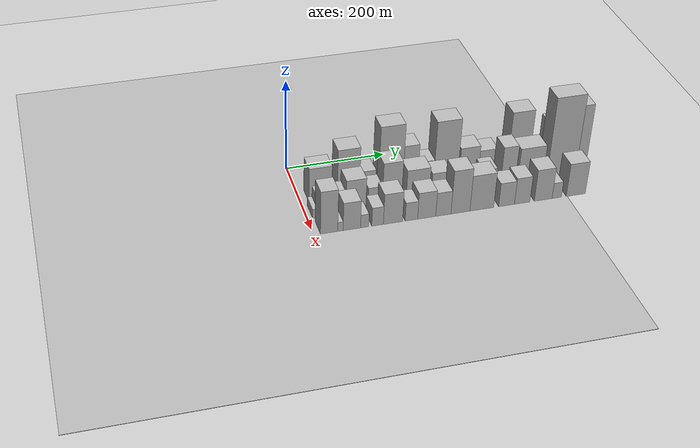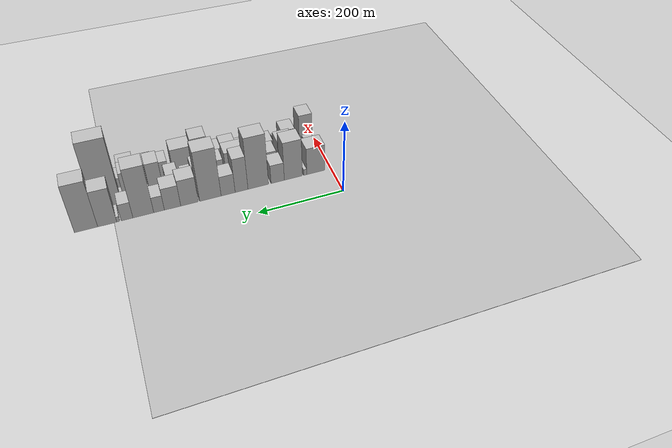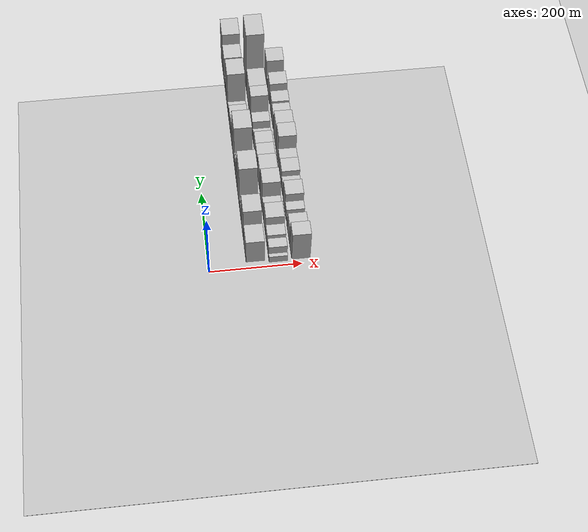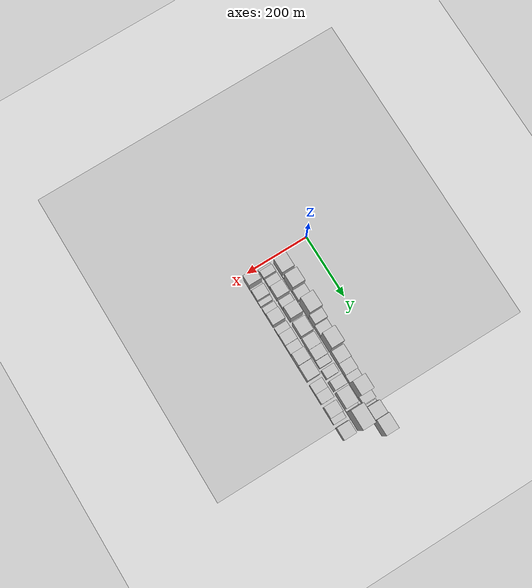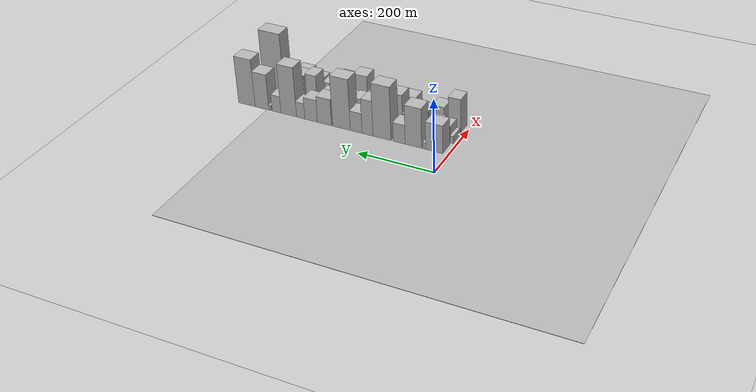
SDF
<sdf version="1.6">
 <world name="default">
  <include><name>ground_plane_1</name><uri>model://HANNAS_ground_plane</uri></include>
  <include>
   <name>ground_plane_2</name>
   <uri>model://HANNAS_ground_plane</uri>
   <pose>100 0 0  0 0 0</pose>
  </include>
  <model name="building_15">
   <static>1</static>
   <pose>100.0000 37.9918 0 0.000000 0.000000 0.000000</pose>
   <link name="link">
    <pose>0 0 39.00 0 0 0</pose>
    <collision name="collision"><geometry><box><size>40.0000 44.9849 78.0000</size></box></geometry></collision>
    <visual name="visual">
     <cast_shadows>0</cast_shadows>
     <geometry><box><size>40.0000 44.9849 78.0000</size></box></geometry>
     <material>
      <script>
       <uri>model://HANNAS_wall/materials/scripts</uri>
       <uri>model://HANNAS_wall/materials/textures</uri>
       <name>vrc/HANNAS_wall</name>
      </script>
     </material>
    </visual>
   </link>
  </model>
  <model name="building_16">
   <static>1</static>
   <pose>100.0000 64.3034 0 0.000000 0.000000 0.000000</pose>
   <link name="link">
    <pose>0 0 9.00 0 0 0</pose>
    <collision name="collision"><geometry><box><size>40.0000 7.6383 18.0000</size></box></geometry></collision>
    <visual name="visual">
     <cast_shadows>0</cast_shadows>
     <geometry><box><size>40.0000 7.6383 18.0000</size></box></geometry>
     <material>
      <script>
       <uri>model://HANNAS_wall/materials/scripts</uri>
       <uri>model://HANNAS_wall/materials/textures</uri>
       <name>vrc/HANNAS_wall</name>
      </script>
     </material>
    </visual>
   </link>
  </model>
  <model name="building_17">
   <static>1</static>
   <pose>100.0000 93.0453 0 0.000000 0.000000 0.000000</pose>
   <link name="link">
    <pose>0 0 55.50 0 0 0</pose>
    <collision name="collision"><geometry><box><size>40.0000 43.8455 111.0000</size></box></geometry></collision>
    <visual name="visual">
     <cast_shadows>0</cast_shadows>
     <geometry><box><size>40.0000 43.8455 111.0000</size></box></geometry>
     <material>
      <script>
       <uri>model://HANNAS_wall/materials/scripts</uri>
       <uri>model://HANNAS_wall/materials/textures</uri>
       <name>vrc/HANNAS_wall</name>
      </script>
     </material>
    </visual>
   </link>
  </model>
  <model name="building_18">
   <static>1</static>
   <pose>100.0000 130.8705 0 0.000000 0.000000 0.000000</pose>
   <link name="link">
    <pose>0 0 27.00 0 0 0</pose>
    <collision name="collision"><geometry><box><size>40.0000 31.8048 54.0000</size></box></geometry></collision>
    <visual name="visual">
     <cast_shadows>0</cast_shadows>
     <geometry><box><size>40.0000 31.8048 54.0000</size></box></geometry>
     <material>
      <script>
       <uri>model://HANNAS_wall/materials/scripts</uri>
       <uri>model://HANNAS_wall/materials/textures</uri>
       <name>vrc/HANNAS_wall</name>
      </script>
     </material>
    </visual>
   </link>
  </model>
  <model name="building_19">
   <static>1</static>
   <pose>100.0000 177.0895 0 0.000000 0.000000 0.000000</pose>
   <link name="link">
    <pose>0 0 75.00 0 0 0</pose>
    <collision name="collision"><geometry><box><size>40.0000 48.6332 150.0000</size></box></geometry></collision>
    <visual name="visual">
     <cast_shadows>0</cast_shadows>
     <geometry><box><size>40.0000 48.6332 150.0000</size></box></geometry>
     <material>
      <script>
       <uri>model://HANNAS_wall/materials/scripts</uri>
       <uri>model://HANNAS_wall/materials/textures</uri>
       <name>vrc/HANNAS_wall</name>
      </script>
     </material>
    </visual>
   </link>
  </model>
  <model name="building_20">
   <static>1</static>
   <pose>100.0000 216.3856 0 0.000000 0.000000 0.000000</pose>
   <link name="link">
    <pose>0 0 49.50 0 0 0</pose>
    <collision name="collision"><geometry><box><size>40.0000 29.9591 99.0000</size></box></geometry></collision>
    <visual name="visual">
     <cast_shadows>0</cast_shadows>
     <geometry><box><size>40.0000 29.9591 99.0000</size></box></geometry>
     <material>
      <script>
       <uri>model://HANNAS_wall/materials/scripts</uri>
       <uri>model://HANNAS_wall/materials/textures</uri>
       <name>vrc/HANNAS_wall</name>
      </script>
     </material>
    </visual>
   </link>
  </model>
  <model name="building_21">
   <static>1</static>
   <pose>100.0000 247.5497 0 0.000000 0.000000 0.000000</pose>
   <link name="link">
    <pose>0 0 28.50 0 0 0</pose>
    <collision name="collision"><geometry><box><size>40.0000 32.3690 57.0000</size></box></geometry></collision>
    <visual name="visual">
     <cast_shadows>0</cast_shadows>
     <geometry><box><size>40.0000 32.3690 57.0000</size></box></geometry>
     <material>
      <script>
       <uri>model://HANNAS_wall/materials/scripts</uri>
       <uri>model://HANNAS_wall/materials/textures</uri>
       <name>vrc/HANNAS_wall</name>
      </script>
     </material>
    </visual>
   </link>
  </model>
  <model name="building_22">
   <static>1</static>
   <pose>100.0000 288.2058 0 0.000000 0.000000 0.000000</pose>
   <link name="link">
    <pose>0 0 72.00 0 0 0</pose>
    <collision name="collision"><geometry><box><size>40.0000 48.9432 144.0000</size></box></geometry></collision>
    <visual name="visual">
     <cast_shadows>0</cast_shadows>
     <geometry><box><size>40.0000 48.9432 144.0000</size></box></geometry>
     <material>
      <script>
       <uri>model://HANNAS_wall/materials/scripts</uri>
       <uri>model://HANNAS_wall/materials/textures</uri>
       <name>vrc/HANNAS_wall</name>
      </script>
     </material>
    </visual>
   </link>
  </model>
  <model name="building_23">
   <static>1</static>
   <pose>100.0000 335.4742 0 0.000000 0.000000 0.000000</pose>
   <link name="link">
    <pose>0 0 37.50 0 0 0</pose>
    <collision name="collision"><geometry><box><size>40.0000 39.5936 75.0000</size></box></geometry></collision>
    <visual name="visual">
     <cast_shadows>0</cast_shadows>
     <geometry><box><size>40.0000 39.5936 75.0000</size></box></geometry>
     <material>
      <script>
       <uri>model://HANNAS_wall/materials/scripts</uri>
       <uri>model://HANNAS_wall/materials/textures</uri>
       <name>vrc/HANNAS_wall</name>
      </script>
     </material>
    </visual>
   </link>
  </model>
  <model name="building_24">
   <static>1</static>
   <pose>100.0000 373.3319 0 0.000000 0.000000 0.000000</pose>
   <link name="link">
    <pose>0 0 31.50 0 0 0</pose>
    <collision name="collision"><geometry><box><size>40.0000 36.1218 63.0000</size></box></geometry></collision>
    <visual name="visual">
     <cast_shadows>0</cast_shadows>
     <geometry><box><size>40.0000 36.1218 63.0000</size></box></geometry>
     <material>
      <script>
       <uri>model://HANNAS_wall/materials/scripts</uri>
       <uri>model://HANNAS_wall/materials/textures</uri>
       <name>vrc/HANNAS_wall</name>
      </script>
     </material>
    </visual>
   </link>
  </model>
  <model name="building_25">
   <static>1</static>
   <pose>100.0000 403.0657 0 0.000000 0.000000 0.000000</pose>
   <link name="link">
    <pose>0 0 22.50 0 0 0</pose>
    <collision name="collision"><geometry><box><size>40.0000 23.3459 45.0000</size></box></geometry></collision>
    <visual name="visual">
     <cast_shadows>0</cast_shadows>
     <geometry><box><size>40.0000 23.3459 45.0000</size></box></geometry>
     <material>
      <script>
       <uri>model://HANNAS_wall/materials/scripts</uri>
       <uri>model://HANNAS_wall/materials/textures</uri>
       <name>vrc/HANNAS_wall</name>
      </script>
     </material>
    </visual>
   </link>
  </model>
  <model name="building_26">
   <static>1</static>
   <pose>100.0000 437.3186 0 0.000000 0.000000 0.000000</pose>
   <link name="link">
    <pose>0 0 70.50 0 0 0</pose>
    <collision name="collision"><geometry><box><size>40.0000 45.1599 141.0000</size></box></geometry></collision>
    <visual name="visual">
     <cast_shadows>0</cast_shadows>
     <geometry><box><size>40.0000 45.1599 141.0000</size></box></geometry>
     <material>
      <script>
       <uri>model://HANNAS_wall/materials/scripts</uri>
       <uri>model://HANNAS_wall/materials/textures</uri>
       <name>vrc/HANNAS_wall</name>
      </script>
     </material>
    </visual>
   </link>
  </model>
  <model name="building_27">
   <static>1</static>
   <pose>100.0000 472.4783 0 0.000000 0.000000 0.000000</pose>
   <link name="link">
    <pose>0 0 24.00 0 0 0</pose>
    <collision name="collision"><geometry><box><size>40.0000 25.1595 48.0000</size></box></geometry></collision>
    <visual name="visual">
     <cast_shadows>0</cast_shadows>
     <geometry><box><size>40.0000 25.1595 48.0000</size></box></geometry>
     <material>
      <script>
       <uri>model://HANNAS_wall/materials/scripts</uri>
       <uri>model://HANNAS_wall/materials/textures</uri>
       <name>vrc/HANNAS_wall</name>
      </script>
     </material>
    </visual>
   </link>
  </model>
  <model name="building_28">
   <static>1</static>
   <pose>100.0000 491.3182 0 0.000000 0.000000 0.000000</pose>
   <link name="link">
    <pose>0 0 7.50 0 0 0</pose>
    <collision name="collision"><geometry><box><size>40.0000 6.5202 15.0000</size></box></geometry></collision>
    <visual name="visual">
     <cast_shadows>0</cast_shadows>
     <geometry><box><size>40.0000 6.5202 15.0000</size></box></geometry>
     <material>
      <script>
       <uri>model://HANNAS_wall/materials/scripts</uri>
       <uri>model://HANNAS_wall/materials/textures</uri>
       <name>vrc/HANNAS_wall</name>
      </script>
     </material>
    </visual>
   </link>
  </model>
  <model name="building_29">
   <static>1</static>
   <pose>100.0000 514.7779 0 0.000000 0.000000 0.000000</pose>
   <link name="link">
    <pose>0 0 51.00 0 0 0</pose>
    <collision name="collision"><geometry><box><size>40.0000 40.3991 102.0000</size></box></geometry></collision>
    <visual name="visual">
     <cast_shadows>0</cast_shadows>
     <geometry><box><size>40.0000 40.3991 102.0000</size></box></geometry>
     <material>
      <script>
       <uri>model://HANNAS_wall/materials/scripts</uri>
       <uri>model://HANNAS_wall/materials/textures</uri>
       <name>vrc/HANNAS_wall</name>
      </script>
     </material>
    </visual>
   </link>
  </model>
  <model name="building_30">
   <static>1</static>
   <pose>100.0000 559.2264 0 0.000000 0.000000 0.000000</pose>
   <link name="link">
    <pose>0 0 67.50 0 0 0</pose>
    <collision name="collision"><geometry><box><size>40.0000 48.4979 135.0000</size></box></geometry></collision>
    <visual name="visual">
     <cast_shadows>0</cast_shadows>
     <geometry><box><size>40.0000 48.4979 135.0000</size></box></geometry>
     <material>
      <script>
       <uri>model://HANNAS_wall/materials/scripts</uri>
       <uri>model://HANNAS_wall/materials/textures</uri>
       <name>vrc/HANNAS_wall</name>
      </script>
     </material>
    </visual>
   </link>
  </model>
  <model name="building_47">
   <static>1</static>
   <pose>149.0000 14.4540 0 0.000000 0.000000 0.000000</pose>
   <link name="link">
    <pose>0 0 10.50 0 0 0</pose>
    <collision name="collision"><geometry><box><size>40.0000 8.8197 21.0000</size></box></geometry></collision>
    <visual name="visual">
     <cast_shadows>0</cast_shadows>
     <geometry><box><size>40.0000 8.8197 21.0000</size></box></geometry>
     <material>
      <script>
       <uri>model://HANNAS_wall/materials/scripts</uri>
       <uri>model://HANNAS_wall/materials/textures</uri>
       <name>vrc/HANNAS_wall</name>
      </script>
     </material>
    </visual>
   </link>
  </model>
  <model name="building_48">
   <static>1</static>
   <pose>149.0000 30.4385 0 0.000000 0.000000 0.000000</pose>
   <link name="link">
    <pose>0 0 22.50 0 0 0</pose>
    <collision name="collision"><geometry><box><size>40.0000 23.1492 45.0000</size></box></geometry></collision>
    <visual name="visual">
     <cast_shadows>0</cast_shadows>
     <geometry><box><size>40.0000 23.1492 45.0000</size></box></geometry>
     <material>
      <script>
       <uri>model://HANNAS_wall/materials/scripts</uri>
       <uri>model://HANNAS_wall/materials/textures</uri>
       <name>vrc/HANNAS_wall</name>
      </script>
     </material>
    </visual>
   </link>
  </model>
  <model name="building_49">
   <static>1</static>
   <pose>149.0000 60.8361 0 0.000000 0.000000 0.000000</pose>
   <link name="link">
    <pose>0 0 24.00 0 0 0</pose>
    <collision name="collision"><geometry><box><size>40.0000 27.6461 48.0000</size></box></geometry></collision>
    <visual name="visual">
     <cast_shadows>0</cast_shadows>
     <geometry><box><size>40.0000 27.6461 48.0000</size></box></geometry>
     <material>
      <script>
       <uri>model://HANNAS_wall/materials/scripts</uri>
       <uri>model://HANNAS_wall/materials/textures</uri>
       <name>vrc/HANNAS_wall</name>
      </script>
     </material>
    </visual>
   </link>
  </model>
  <model name="building_50">
   <static>1</static>
   <pose>149.0000 94.0696 0 0.000000 0.000000 0.000000</pose>
   <link name="link">
    <pose>0 0 37.50 0 0 0</pose>
    <collision name="collision"><geometry><box><size>40.0000 38.8209 75.0000</size></box></geometry></collision>
    <visual name="visual">
     <cast_shadows>0</cast_shadows>
     <geometry><box><size>40.0000 38.8209 75.0000</size></box></geometry>
     <material>
      <script>
       <uri>model://HANNAS_wall/materials/scripts</uri>
       <uri>model://HANNAS_wall/materials/textures</uri>
       <name>vrc/HANNAS_wall</name>
      </script>
     </material>
    </visual>
   </link>
  </model>
  <model name="building_51">
   <static>1</static>
   <pose>149.0000 131.4338 0 0.000000 0.000000 0.000000</pose>
   <link name="link">
    <pose>0 0 25.50 0 0 0</pose>
    <collision name="collision"><geometry><box><size>40.0000 27.9074 51.0000</size></box></geometry></collision>
    <visual name="visual">
     <cast_shadows>0</cast_shadows>
     <geometry><box><size>40.0000 27.9074 51.0000</size></box></geometry>
     <material>
      <script>
       <uri>model://HANNAS_wall/materials/scripts</uri>
       <uri>model://HANNAS_wall/materials/textures</uri>
       <name>vrc/HANNAS_wall</name>
      </script>
     </material>
    </visual>
   </link>
  </model>
  <model name="building_52">
   <static>1</static>
   <pose>149.0000 164.4313 0 0.000000 0.000000 0.000000</pose>
   <link name="link">
    <pose>0 0 51.00 0 0 0</pose>
    <collision name="collision"><geometry><box><size>40.0000 38.0876 102.0000</size></box></geometry></collision>
    <visual name="visual">
     <cast_shadows>0</cast_shadows>
     <geometry><box><size>40.0000 38.0876 102.0000</size></box></geometry>
     <material>
      <script>
       <uri>model://HANNAS_wall/materials/scripts</uri>
       <uri>model://HANNAS_wall/materials/textures</uri>
       <name>vrc/HANNAS_wall</name>
      </script>
     </material>
    </visual>
   </link>
  </model>
  <model name="building_53">
   <static>1</static>
   <pose>149.0000 215.4328 0 0.000000 0.000000 0.000000</pose>
   <link name="link">
    <pose>0 0 39.00 0 0 0</pose>
    <collision name="collision"><geometry><box><size>40.0000 45.9155 78.0000</size></box></geometry></collision>
    <visual name="visual">
     <cast_shadows>0</cast_shadows>
     <geometry><box><size>40.0000 45.9155 78.0000</size></box></geometry>
     <material>
      <script>
       <uri>model://HANNAS_wall/materials/scripts</uri>
       <uri>model://HANNAS_wall/materials/textures</uri>
       <name>vrc/HANNAS_wall</name>
      </script>
     </material>
    </visual>
   </link>
  </model>
  <model name="building_54">
   <static>1</static>
   <pose>149.0000 261.2427 0 0.000000 0.000000 0.000000</pose>
   <link name="link">
    <pose>0 0 31.50 0 0 0</pose>
    <collision name="collision"><geometry><box><size>40.0000 37.7043 63.0000</size></box></geometry></collision>
    <visual name="visual">
     <cast_shadows>0</cast_shadows>
     <geometry><box><size>40.0000 37.7043 63.0000</size></box></geometry>
     <material>
      <script>
       <uri>model://HANNAS_wall/materials/scripts</uri>
       <uri>model://HANNAS_wall/materials/textures</uri>
       <name>vrc/HANNAS_wall</name>
      </script>
     </material>
    </visual>
   </link>
  </model>
  <model name="building_55">
   <static>1</static>
   <pose>149.0000 297.2227 0 0.000000 0.000000 0.000000</pose>
   <link name="link">
    <pose>0 0 30.00 0 0 0</pose>
    <collision name="collision"><geometry><box><size>40.0000 34.2557 60.0000</size></box></geometry></collision>
    <visual name="visual">
     <cast_shadows>0</cast_shadows>
     <geometry><box><size>40.0000 34.2557 60.0000</size></box></geometry>
     <material>
      <script>
       <uri>model://HANNAS_wall/materials/scripts</uri>
       <uri>model://HANNAS_wall/materials/textures</uri>
       <name>vrc/HANNAS_wall</name>
      </script>
     </material>
    </visual>
   </link>
  </model>
  <model name="building_56">
   <static>1</static>
   <pose>149.0000 325.9639 0 0.000000 0.000000 0.000000</pose>
   <link name="link">
    <pose>0 0 19.50 0 0 0</pose>
    <collision name="collision"><geometry><box><size>40.0000 23.2268 39.0000</size></box></geometry></collision>
    <visual name="visual">
     <cast_shadows>0</cast_shadows>
     <geometry><box><size>40.0000 23.2268 39.0000</size></box></geometry>
     <material>
      <script>
       <uri>model://HANNAS_wall/materials/scripts</uri>
       <uri>model://HANNAS_wall/materials/textures</uri>
       <name>vrc/HANNAS_wall</name>
      </script>
     </material>
    </visual>
   </link>
  </model>
  <model name="building_57">
   <static>1</static>
   <pose>149.0000 358.6714 0 0.000000 0.000000 0.000000</pose>
   <link name="link">
    <pose>0 0 27.00 0 0 0</pose>
    <collision name="collision"><geometry><box><size>40.0000 28.1883 54.0000</size></box></geometry></collision>
    <visual name="visual">
     <cast_shadows>0</cast_shadows>
     <geometry><box><size>40.0000 28.1883 54.0000</size></box></geometry>
     <material>
      <script>
       <uri>model://HANNAS_wall/materials/scripts</uri>
       <uri>model://HANNAS_wall/materials/textures</uri>
       <name>vrc/HANNAS_wall</name>
      </script>
     </material>
    </visual>
   </link>
  </model>
  <model name="building_58">
   <static>1</static>
   <pose>149.0000 396.8241 0 0.000000 0.000000 0.000000</pose>
   <link name="link">
    <pose>0 0 49.50 0 0 0</pose>
    <collision name="collision"><geometry><box><size>40.0000 30.1171 99.0000</size></box></geometry></collision>
    <visual name="visual">
     <cast_shadows>0</cast_shadows>
     <geometry><box><size>40.0000 30.1171 99.0000</size></box></geometry>
     <material>
      <script>
       <uri>model://HANNAS_wall/materials/scripts</uri>
       <uri>model://HANNAS_wall/materials/textures</uri>
       <name>vrc/HANNAS_wall</name>
      </script>
     </material>
    </visual>
   </link>
  </model>
  <model name="building_59">
   <static>1</static>
   <pose>149.0000 443.0105 0 0.000000 0.000000 0.000000</pose>
   <link name="link">
    <pose>0 0 45.00 0 0 0</pose>
    <collision name="collision"><geometry><box><size>40.0000 52.2557 90.0000</size></box></geometry></collision>
    <visual name="visual">
     <cast_shadows>0</cast_shadows>
     <geometry><box><size>40.0000 52.2557 90.0000</size></box></geometry>
     <material>
      <script>
       <uri>model://HANNAS_wall/materials/scripts</uri>
       <uri>model://HANNAS_wall/materials/textures</uri>
       <name>vrc/HANNAS_wall</name>
      </script>
     </material>
    </visual>
   </link>
  </model>
  <model name="building_60">
   <static>1</static>
   <pose>149.0000 472.9419 0 0.000000 0.000000 0.000000</pose>
   <link name="link">
    <pose>0 0 9.00 0 0 0</pose>
    <collision name="collision"><geometry><box><size>40.0000 7.6071 18.0000</size></box></geometry></collision>
    <visual name="visual">
     <cast_shadows>0</cast_shadows>
     <geometry><box><size>40.0000 7.6071 18.0000</size></box></geometry>
     <material>
      <script>
       <uri>model://HANNAS_wall/materials/scripts</uri>
       <uri>model://HANNAS_wall/materials/textures</uri>
       <name>vrc/HANNAS_wall</name>
      </script>
     </material>
    </visual>
   </link>
  </model>
  <model name="building_61">
   <static>1</static>
   <pose>149.0000 506.7350 0 0.000000 0.000000 0.000000</pose>
   <link name="link">
    <pose>0 0 97.50 0 0 0</pose>
    <collision name="collision"><geometry><box><size>40.0000 59.9790 195.0000</size></box></geometry></collision>
    <visual name="visual">
     <cast_shadows>0</cast_shadows>
     <geometry><box><size>40.0000 59.9790 195.0000</size></box></geometry>
     <material>
      <script>
       <uri>model://HANNAS_wall/materials/scripts</uri>
       <uri>model://HANNAS_wall/materials/textures</uri>
       <name>vrc/HANNAS_wall</name>
      </script>
     </material>
    </visual>
   </link>
  </model>
  <model name="building_80">
   <static>1</static>
   <pose>198.0000 28.9356 0 0.000000 0.000000 0.000000</pose>
   <link name="link">
    <pose>0 0 48.00 0 0 0</pose>
    <collision name="collision"><geometry><box><size>40.0000 33.0670 96.0000</size></box></geometry></collision>
    <visual name="visual">
     <cast_shadows>0</cast_shadows>
     <geometry><box><size>40.0000 33.0670 96.0000</size></box></geometry>
     <material>
      <script>
       <uri>model://HANNAS_wall/materials/scripts</uri>
       <uri>model://HANNAS_wall/materials/textures</uri>
       <name>vrc/HANNAS_wall</name>
      </script>
     </material>
    </visual>
   </link>
  </model>
  <model name="building_81">
   <static>1</static>
   <pose>198.0000 50.5561 0 0.000000 0.000000 0.000000</pose>
   <link name="link">
    <pose>0 0 10.50 0 0 0</pose>
    <collision name="collision"><geometry><box><size>40.0000 10.1740 21.0000</size></box></geometry></collision>
    <visual name="visual">
     <cast_shadows>0</cast_shadows>
     <geometry><box><size>40.0000 10.1740 21.0000</size></box></geometry>
     <material>
      <script>
       <uri>model://HANNAS_wall/materials/scripts</uri>
       <uri>model://HANNAS_wall/materials/textures</uri>
       <name>vrc/HANNAS_wall</name>
      </script>
     </material>
    </visual>
   </link>
  </model>
  <model name="building_82">
   <static>1</static>
   <pose>198.0000 72.4314 0 0.000000 0.000000 0.000000</pose>
   <link name="link">
    <pose>0 0 31.50 0 0 0</pose>
    <collision name="collision"><geometry><box><size>40.0000 33.5767 63.0000</size></box></geometry></collision>
    <visual name="visual">
     <cast_shadows>0</cast_shadows>
     <geometry><box><size>40.0000 33.5767 63.0000</size></box></geometry>
     <material>
      <script>
       <uri>model://HANNAS_wall/materials/scripts</uri>
       <uri>model://HANNAS_wall/materials/textures</uri>
       <name>vrc/HANNAS_wall</name>
      </script>
     </material>
    </visual>
   </link>
  </model>
  <model name="building_83">
   <static>1</static>
   <pose>198.0000 97.0385 0 0.000000 0.000000 0.000000</pose>
   <link name="link">
    <pose>0 0 15.00 0 0 0</pose>
    <collision name="collision"><geometry><box><size>40.0000 15.6375 30.0000</size></box></geometry></collision>
    <visual name="visual">
     <cast_shadows>0</cast_shadows>
     <geometry><box><size>40.0000 15.6375 30.0000</size></box></geometry>
     <material>
      <script>
       <uri>model://HANNAS_wall/materials/scripts</uri>
       <uri>model://HANNAS_wall/materials/textures</uri>
       <name>vrc/HANNAS_wall</name>
      </script>
     </material>
    </visual>
   </link>
  </model>
  <model name="building_84">
   <static>1</static>
   <pose>198.0000 122.0352 0 0.000000 0.000000 0.000000</pose>
   <link name="link">
    <pose>0 0 21.00 0 0 0</pose>
    <collision name="collision"><geometry><box><size>40.0000 22.3557 42.0000</size></box></geometry></collision>
    <visual name="visual">
     <cast_shadows>0</cast_shadows>
     <geometry><box><size>40.0000 22.3557 42.0000</size></box></geometry>
     <material>
      <script>
       <uri>model://HANNAS_wall/materials/scripts</uri>
       <uri>model://HANNAS_wall/materials/textures</uri>
       <name>vrc/HANNAS_wall</name>
      </script>
     </material>
    </visual>
   </link>
  </model>
  <model name="building_85">
   <static>1</static>
   <pose>198.0000 151.8828 0 0.000000 0.000000 0.000000</pose>
   <link name="link">
    <pose>0 0 34.50 0 0 0</pose>
    <collision name="collision"><geometry><box><size>40.0000 37.3395 69.0000</size></box></geometry></collision>
    <visual name="visual">
     <cast_shadows>0</cast_shadows>
     <geometry><box><size>40.0000 37.3395 69.0000</size></box></geometry>
     <material>
      <script>
       <uri>model://HANNAS_wall/materials/scripts</uri>
       <uri>model://HANNAS_wall/materials/textures</uri>
       <name>vrc/HANNAS_wall</name>
      </script>
     </material>
    </visual>
   </link>
  </model>
  <model name="building_86">
   <static>1</static>
   <pose>198.0000 187.7131 0 0.000000 0.000000 0.000000</pose>
   <link name="link">
    <pose>0 0 21.00 0 0 0</pose>
    <collision name="collision"><geometry><box><size>40.0000 24.3212 42.0000</size></box></geometry></collision>
    <visual name="visual">
     <cast_shadows>0</cast_shadows>
     <geometry><box><size>40.0000 24.3212 42.0000</size></box></geometry>
     <material>
      <script>
       <uri>model://HANNAS_wall/materials/scripts</uri>
       <uri>model://HANNAS_wall/materials/textures</uri>
       <name>vrc/HANNAS_wall</name>
      </script>
     </material>
    </visual>
   </link>
  </model>
  <model name="building_87">
   <static>1</static>
   <pose>198.0000 217.6451 0 0.000000 0.000000 0.000000</pose>
   <link name="link">
    <pose>0 0 30.00 0 0 0</pose>
    <collision name="collision"><geometry><box><size>40.0000 35.5427 60.0000</size></box></geometry></collision>
    <visual name="visual">
     <cast_shadows>0</cast_shadows>
     <geometry><box><size>40.0000 35.5427 60.0000</size></box></geometry>
     <material>
      <script>
       <uri>model://HANNAS_wall/materials/scripts</uri>
       <uri>model://HANNAS_wall/materials/textures</uri>
       <name>vrc/HANNAS_wall</name>
      </script>
     </material>
    </visual>
   </link>
  </model>
  <model name="building_88">
   <static>1</static>
   <pose>198.0000 250.5292 0 0.000000 0.000000 0.000000</pose>
   <link name="link">
    <pose>0 0 27.00 0 0 0</pose>
    <collision name="collision"><geometry><box><size>40.0000 30.2255 54.0000</size></box></geometry></collision>
    <visual name="visual">
     <cast_shadows>0</cast_shadows>
     <geometry><box><size>40.0000 30.2255 54.0000</size></box></geometry>
     <material>
      <script>
       <uri>model://HANNAS_wall/materials/scripts</uri>
       <uri>model://HANNAS_wall/materials/textures</uri>
       <name>vrc/HANNAS_wall</name>
      </script>
     </material>
    </visual>
   </link>
  </model>
  <model name="building_89">
   <static>1</static>
   <pose>198.0000 284.4196 0 0.000000 0.000000 0.000000</pose>
   <link name="link">
    <pose>0 0 49.50 0 0 0</pose>
    <collision name="collision"><geometry><box><size>40.0000 37.5553 99.0000</size></box></geometry></collision>
    <visual name="visual">
     <cast_shadows>0</cast_shadows>
     <geometry><box><size>40.0000 37.5553 99.0000</size></box></geometry>
     <material>
      <script>
       <uri>model://HANNAS_wall/materials/scripts</uri>
       <uri>model://HANNAS_wall/materials/textures</uri>
       <name>vrc/HANNAS_wall</name>
      </script>
     </material>
    </visual>
   </link>
  </model>
  <model name="building_90">
   <static>1</static>
   <pose>198.0000 326.9227 0 0.000000 0.000000 0.000000</pose>
   <link name="link">
    <pose>0 0 40.50 0 0 0</pose>
    <collision name="collision"><geometry><box><size>40.0000 47.4509 81.0000</size></box></geometry></collision>
    <visual name="visual">
     <cast_shadows>0</cast_shadows>
     <geometry><box><size>40.0000 47.4509 81.0000</size></box></geometry>
     <material>
      <script>
       <uri>model://HANNAS_wall/materials/scripts</uri>
       <uri>model://HANNAS_wall/materials/textures</uri>
       <name>vrc/HANNAS_wall</name>
      </script>
     </material>
    </visual>
   </link>
  </model>
  <model name="building_91">
   <static>1</static>
   <pose>198.0000 376.5751 0 0.000000 0.000000 0.000000</pose>
   <link name="link">
    <pose>0 0 27.00 0 0 0</pose>
    <collision name="collision"><geometry><box><size>40.0000 31.8540 54.0000</size></box></geometry></collision>
    <visual name="visual">
     <cast_shadows>0</cast_shadows>
     <geometry><box><size>40.0000 31.8540 54.0000</size></box></geometry>
     <material>
      <script>
       <uri>model://HANNAS_wall/materials/scripts</uri>
       <uri>model://HANNAS_wall/materials/textures</uri>
       <name>vrc/HANNAS_wall</name>
      </script>
     </material>
    </visual>
   </link>
  </model>
  <model name="building_92">
   <static>1</static>
   <pose>198.0000 408.1291 0 0.000000 0.000000 0.000000</pose>
   <link name="link">
    <pose>0 0 30.00 0 0 0</pose>
    <collision name="collision"><geometry><box><size>40.0000 31.2540 60.0000</size></box></geometry></collision>
    <visual name="visual">
     <cast_shadows>0</cast_shadows>
     <geometry><box><size>40.0000 31.2540 60.0000</size></box></geometry>
     <material>
      <script>
       <uri>model://HANNAS_wall/materials/scripts</uri>
       <uri>model://HANNAS_wall/materials/textures</uri>
       <name>vrc/HANNAS_wall</name>
      </script>
     </material>
    </visual>
   </link>
  </model>
  <model name="building_93">
   <static>1</static>
   <pose>198.0000 450.8906 0 0.000000 0.000000 0.000000</pose>
   <link name="link">
    <pose>0 0 36.00 0 0 0</pose>
    <collision name="collision"><geometry><box><size>40.0000 36.2689 72.0000</size></box></geometry></collision>
    <visual name="visual">
     <cast_shadows>0</cast_shadows>
     <geometry><box><size>40.0000 36.2689 72.0000</size></box></geometry>
     <material>
      <script>
       <uri>model://HANNAS_wall/materials/scripts</uri>
       <uri>model://HANNAS_wall/materials/textures</uri>
       <name>vrc/HANNAS_wall</name>
      </script>
     </material>
    </visual>
   </link>
  </model>
  <model name="building_94">
   <static>1</static>
   <pose>198.0000 478.5374 0 0.000000 0.000000 0.000000</pose>
   <link name="link">
    <pose>0 0 18.00 0 0 0</pose>
    <collision name="collision"><geometry><box><size>40.0000 19.0246 36.0000</size></box></geometry></collision>
    <visual name="visual">
     <cast_shadows>0</cast_shadows>
     <geometry><box><size>40.0000 19.0246 36.0000</size></box></geometry>
     <material>
      <script>
       <uri>model://HANNAS_wall/materials/scripts</uri>
       <uri>model://HANNAS_wall/materials/textures</uri>
       <name>vrc/HANNAS_wall</name>
      </script>
     </material>
    </visual>
   </link>
  </model>
  <model name="building_95">
   <static>1</static>
   <pose>198.0000 517.6956 0 0.000000 0.000000 0.000000</pose>
   <link name="link">
    <pose>0 0 37.50 0 0 0</pose>
    <collision name="collision"><geometry><box><size>40.0000 39.2918 75.0000</size></box></geometry></collision>
    <visual name="visual">
     <cast_shadows>0</cast_shadows>
     <geometry><box><size>40.0000 39.2918 75.0000</size></box></geometry>
     <material>
      <script>
       <uri>model://HANNAS_wall/materials/scripts</uri>
       <uri>model://HANNAS_wall/materials/textures</uri>
       <name>vrc/HANNAS_wall</name>
      </script>
     </material>
    </visual>
   </link>
  </model>
 </world>
</sdf>
